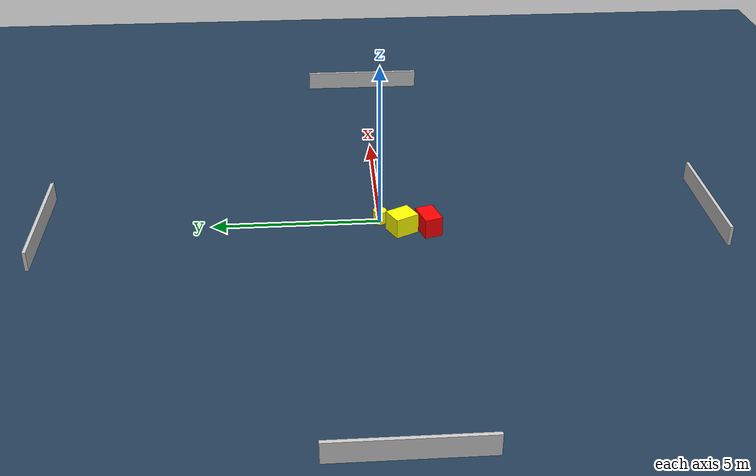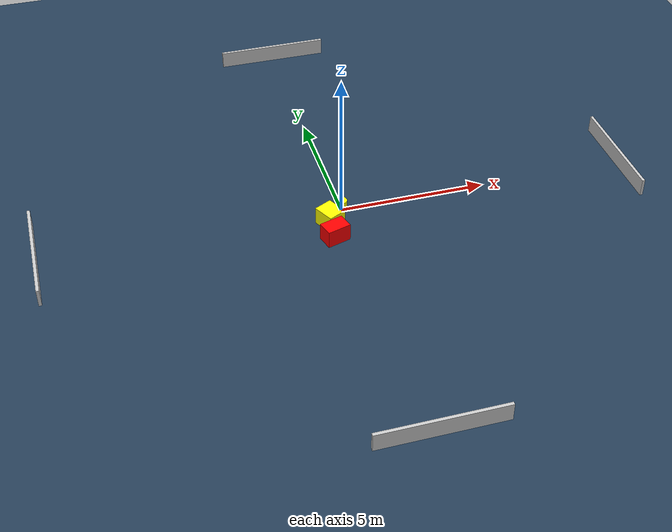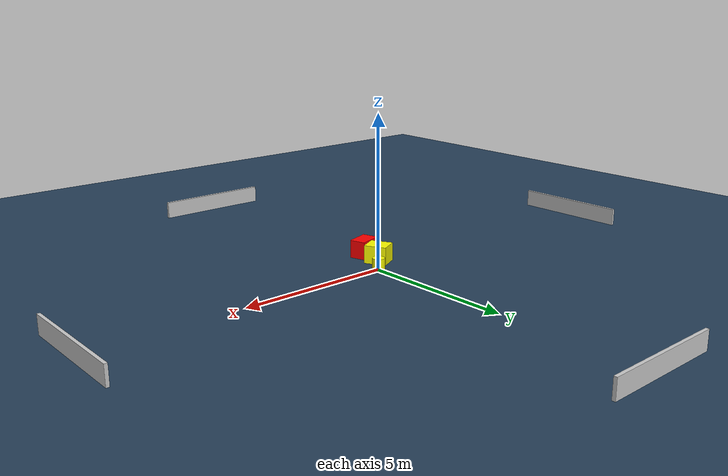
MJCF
<?xml version="1.0" ?>
<mujoco model="generated_environment">
  <option timestep="0.01" integrator="RK4" cone="elliptic"/>
  <default>
    <geom density="1"/>
  </default>
  <asset>
    <texture builtin="gradient" height="3072" name="skybox" rgb1="0.3 0.5 0.7" rgb2="0 0 0" type="skybox" width="512"/>
    <texture builtin="checker" height="300" name="groundplane" rgb1="0.2 0.3 0.4" rgb2="0.1 0.2 0.3" type="2d" width="300"/>
    <material name="groundplane" reflectance="0.2" texrepeat="5 5" texture="groundplane"/>
  </asset>
  <worldbody>
    <light dir="0 0 -1" directional="true" pos="0 0 1.5"/>
    <geom condim="3" friction="0.5 0.005 0.001" material="groundplane" name="floor" pos="0 0 0" size="0 0 0.05" type="plane"/>
    <body name="walls">
      <geom name="wall_1" condim="4" pos="-10.0 0.0 0.3" rgba="0.800000011920929 0.800000011920929 0.800000011920929 1.0" size="0.05 2.0 0.3" type="box"/>
      <geom name="wall_2" condim="4" pos="10.0 0.0 0.3" rgba="0.800000011920929 0.800000011920929 0.800000011920929 1.0" size="0.05 2.0 0.3" type="box"/>
      <geom name="wall_3" condim="4" pos="0.0 -10.0 0.3" rgba="0.800000011920929 0.800000011920929 0.800000011920929 1.0" size="2.0 0.05 0.3" type="box"/>
      <geom name="wall_4" condim="4" pos="0.0 10.0 0.3" rgba="0.800000011920929 0.800000011920929 0.800000011920929 1.0" size="2.0 0.05 0.3" type="box"/>
    </body>
    <body name="robot">
      <joint name="joint_x" type="slide" pos="0 0 0" axis="1 0 0"/>
      <joint name="joint_y" type="slide" pos="0 0 0" axis="0 1 0"/>
      <geom name="robot" type="cylinder" pos="0.0 0.0 0.2" size="0.2 0.2 0.0" mass="5.0" friction="1.0 0.005 0.0001" condim="4" rgba="1.0 1.0 0.0 1.0"/>
    </body>
    <body name="obstacle_1_movable">
      <geom name="obstacle_1_movable" condim="4" pos="-0.5414830419471746 -0.6165754176130714 0.3" euler="0 0 207.10200560142758" friction="0.0 0.005 0.001" rgba="1.0 1.0 0.0 1.0" size="0.3197646267583275 0.37055788929527933 0.3" type="box" mass="0.1"/>
      <joint type="free"/>
    </body>
    <body name="obstacle_2_static">
      <geom name="obstacle_2_static" condim="4" pos="-0.5938033397758695 -1.402707757019921 0.3" euler="0 0 196.69044913729238" friction="0.0 0.005 0.001" rgba="1.0 0.0 0.0 1.0" size="0.4037978893554446 0.27118728687817956 0.3" type="box"/>
    </body>
  </worldbody>
  <actuator>
    <motor name="actuator_x" joint="joint_x" gear="1" ctrlrange="-1 1"/>
    <motor name="actuator_y" joint="joint_y" gear="1" ctrlrange="-1 1"/>
  </actuator>
</mujoco>
